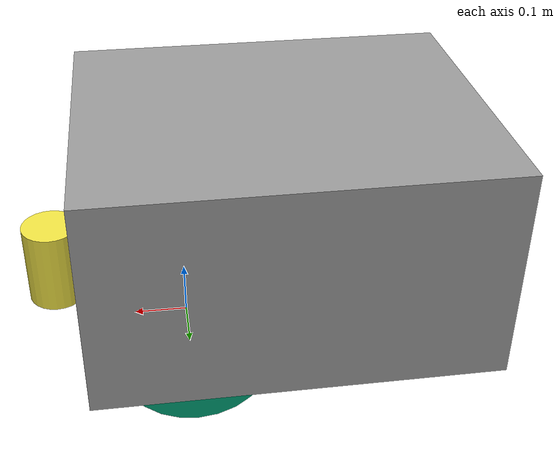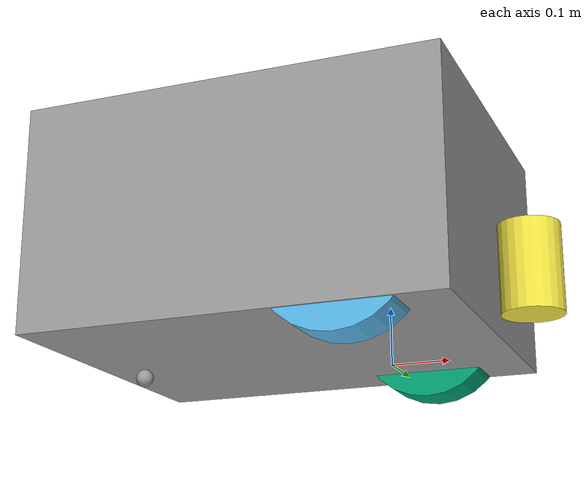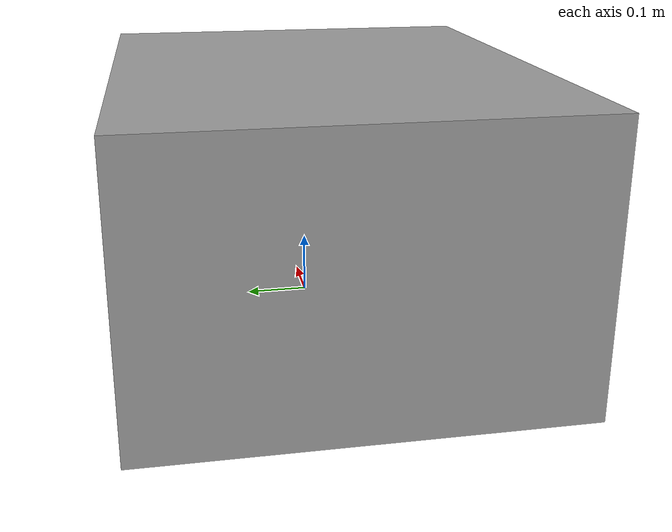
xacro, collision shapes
<?xml version="1.0"?>
<!-- Materials -->
<robot xmlns:xacro="http://www.ros.org/wiki/xacro" name="mp_500">

  <!--GAZEBO REFERENCES -->
  <xacro:include filename="$(find neo_simulation)/robots/mp_500/xacros/mp_500_gazebo.xacro" />

  <!-- MATERIALS -->
  <xacro:include filename="$(find neo_simulation)/robots/mp_500/xacros/mp_500_materials.xacro" />

	<!--++++++++++++++++++++++++++++++base_link++++++++++++++++++++++++++++++++++++++++++++++++++++-->
	<!--++++++++++++++++++++body++++++++++++++++++++++++++++-->
	<link name="base_link">

		<inertial>
			<mass value="5.67" />
			<origin xyz="0 0 0.0" rpy="0 0 0"/>
			<inertia ixx="0.07" ixy="0.0" ixz="0.0"
				     iyy="0.08" iyz="0.0"
				     izz="0.1" />
		</inertial>
	      <visual name='body'>
			<origin xyz="0.0 0.0 0.075" rpy="0 0 1.57" /><!-- for STL -->
		<geometry>
		    <mesh filename="package://neo_simulation/robots/mp_500/meshes/base.stl" scale="1 1 1"/>
		</geometry>
		<material name="Neobotix/Grey" />
	      </visual>
	      <collision name='body_collision'>
		<origin xyz="-0.183 0.0 0.234" rpy="0 0 0" />
		<geometry>
		  <box size="0.734 0.600 0.400"/>
		  <!--cylinder length="0.381" radius="0.2545"/-->
		</geometry>
	      </collision>

	<!--+++++++++++++++++++castor_back++++++++++++++++++++++++-->

	      <collision name='castor_back_collision'>
		  	<origin xyz="-0.47 0 0.0161 " rpy="0 0 0" />
		  <geometry>
		    <sphere radius="0.016"/>
		  </geometry>
	       </collision>

	</link>

	<!--+++++++++++++++++++wheel_left_link++++++++++++++++++++++++-->
	<link name="wheel_left_link" type="wheel">

	    <inertial>
	      <mass value="1.5" />
	      <origin xyz="0.0 0.0 -0.0" rpy="0 0 0" />
	      <inertia ixx="0.0051" ixy="0" ixz="0" iyy="0.0051" iyz="0" izz="0.009" />
	    </inertial>
	    <collision>
	     	<origin xyz="0.0 0.0 0.0" rpy="0 0 0" />
	     	<geometry>
			<cylinder radius="0.13" length="0.085"/>
	     	</geometry>
	    </collision>
	</link>

	<!--+++++++++++++++++++wheel_left_joint++++++++++++++++++++++++-->
		<joint name="wheel_left_joint" type="revolute">
			<origin xyz="0 -0.2534 0.119" rpy="0 1.57 1.57" />
	    	<axis xyz="0 0 1"/>
	    	<limit effort="1000.0" lower="-1e+16" upper="1e+16" velocity="3.5"/>
	    	<joint_properties damping="0.0" friction="0.0" />
	    	<parent link="base_link" />
	    	<child link="wheel_left_link" />
	    </joint>

	<!--+++++++++++++++++++wheel_right_link++++++++++++++++++++++++-->
	<link name="wheel_right_link" type="wheel">
		<inertial>
	      	  <mass value="1.5" />
		  <origin xyz="0 0.0 0.0" rpy="0 0 0" />
		  <inertia ixx="0.0051" ixy="0" ixz="0" iyy="0.0051" iyz="0" izz="0.009" />
		</inertial>

		<collision>
			<origin xyz="0.0 0.0 0.00" rpy="0 0 0" />
		 	<geometry>
			    	<cylinder radius="0.13" length="0.085"/>
		 	</geometry>
		</collision>
	</link>

	<!--+++++++++++++++++++wheel_right_joint++++++++++++++++++++++++-->
	<joint name="wheel_right_joint" type="revolute">
	   <origin xyz="0 0.2534 0.119" rpy="0 1.57 1.57" />
	   <axis xyz="0 0 1"/>
	   <limit effort="1000.0" lower="-1e+16" upper="1e+16" velocity="3.5"/>
	   <joint_properties damping="0.0" friction="0.0" />
	   <parent link="base_link" />
	   <child link="wheel_right_link" />
	</joint>

	<!--+++++++++++++++++++laserscanner_front_joint++++++++++++++++++++++++-->
	<joint name="scanner_front_joint" type="fixed">
	  <axis xyz="0 1 0" />
	  <origin xyz="0.244 0 0.141" rpy="3.14 0 0" />
	  <parent link="base_link"/>
	  <child link="scanner_front_link"/>
	</joint>

	<!--+++++++++++++++++++laserscanner_front_link++++++++++++++++++++++++-->
	<link name="scanner_front_link" type="laser">
		<inertial>
			<mass value="0.001" />
			<origin xyz="0 0 0.0" rpy="0 0 0" />
			<inertia ixx="0.0001" ixy="0" ixz="0" iyy="0.000001" iyz="0" izz="0.0001" />
	  	</inertial>
	  	<collision>
			<origin xyz="0 0 0" rpy="0 0 0" />
			<geometry>
				<cylinder length="0.154" radius="0.053" />
			</geometry>
		  </collision>
	</link>

	<!--+++++++++++++++++++sonar_fr_joint++++++++++++++++++++++++-->
	<joint name="sonar_fr_joint" type="fixed">
	  <origin xyz="0.20116 -0.140 0.29948" rpy="0 -${pi/6} 0" />
	  <parent link="base_link"/>
	  <child link="sonar_fr_link"/>
	</joint>

	<!--+++++++++++++++++++sonar_fr_link++++++++++++++++++++++++-->
	<link name="sonar_fr_link" type="sonar"/>

	<!--+++++++++++++++++++sonar_fl_joint++++++++++++++++++++++++-->
	<joint name="sonar_fl_joint" type="fixed">
	  <origin xyz="0.20116 0.140 0.29948" rpy="0 -${pi/6} 0" />
	  <parent link="base_link"/>
	  <child link="sonar_fl_link"/>
	</joint>

	<!--+++++++++++++++++++sonar_fl_link++++++++++++++++++++++++-->
	<link name="sonar_fl_link" type="sonar"/>

	<!--+++++++++++++++++++sonar_bc_joint++++++++++++++++++++++++-->
	<joint name="sonar_bc_joint" type="fixed">
	  <origin xyz="-0.51116 0 0.29948" rpy="${pi} -${pi/6 + 2* pi/3} 0" />
	  <parent link="base_link"/>
	  <child link="sonar_bc_link"/>
	</joint>

	<!--+++++++++++++++++++sonar_bc_link++++++++++++++++++++++++-->
	<link name="sonar_bc_link" type="sonar"/>

	<!--+++++++++++++++++++sonar_br_joint++++++++++++++++++++++++-->
	<joint name="sonar_br_joint" type="fixed">
	  <origin xyz="-0.454192 0.122993 0.29948" rpy="0 -${pi/6} ${122/180 *pi}" />
	  <parent link="base_link"/>
	  <child link="sonar_br_link"/>
	</joint>

	<!--+++++++++++++++++++sonar_br_link++++++++++++++++++++++++-->
	<link name="sonar_br_link" type="sonar"/>

	<!--+++++++++++++++++++sonar_bl_joint++++++++++++++++++++++++-->
	<joint name="sonar_bl_joint" type="fixed">
	  <origin xyz="-0.454192 -0.122993 0.29948" rpy="0 -${pi/6} -${122/180 *pi}" />
	  <parent link="base_link"/>
	  <child link="sonar_bl_link"/>
	</joint>

	<!--+++++++++++++++++++sonar_bl_link++++++++++++++++++++++++-->
	<link name="sonar_bl_link" type="sonar"/>

</robot>
